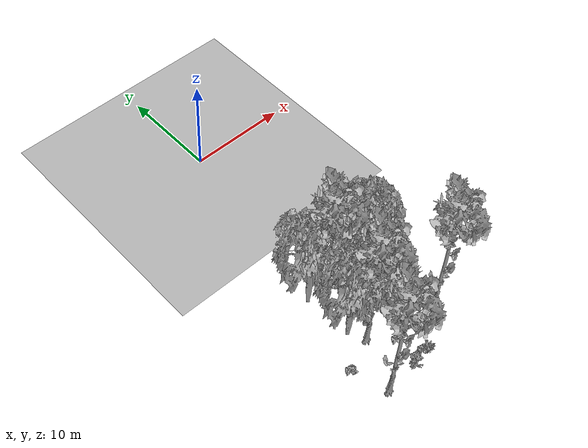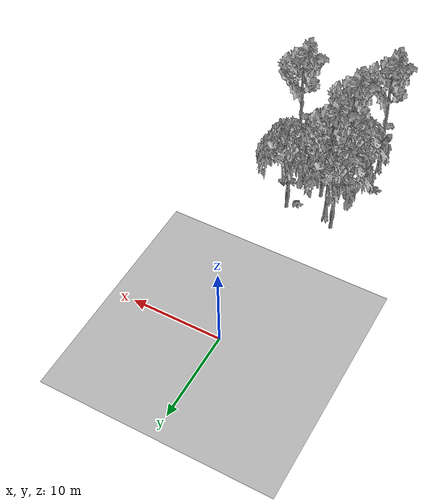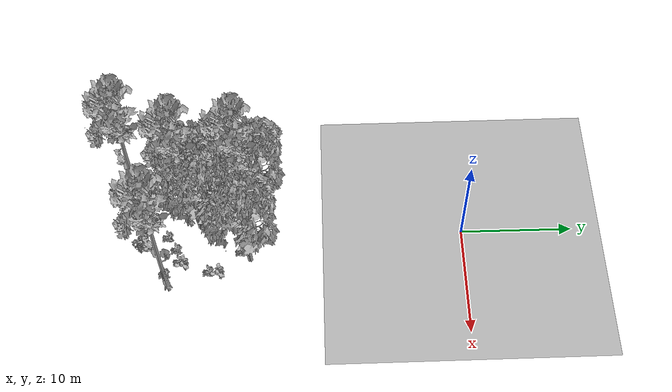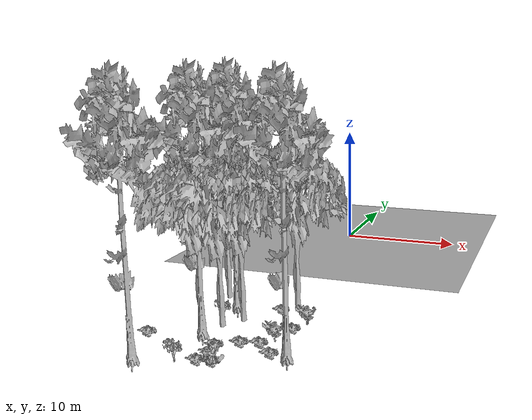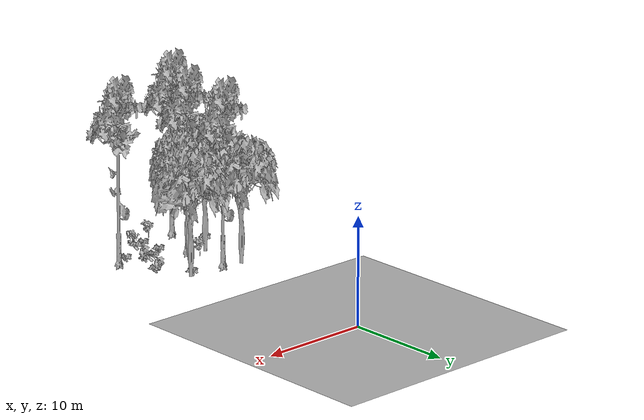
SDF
<sdf version="1.7">
 <world name="default">
  <model name="ground_plane">
   <static>1</static>
   <link name="link">
    <collision name="collision">
     <pose>-50 0 0 0 -0 0</pose>
     <geometry><plane><normal>0 0 1</normal><size>80 80</size></plane></geometry>
     <surface><contact><ode><min_depth>0.01</min_depth><max_vel>0</max_vel></ode></contact></surface>
    </collision>
    <visual name="grass">
     <cast_shadows>0</cast_shadows>
     <geometry>
      <mesh>
       <scale>0.46714285714285714 0.46714285714285714 0.1</scale>
       <uri>file://grass_plane/meshes/grass_plane.dae</uri>
      </mesh>
     </geometry>
    </visual>
   </link>
  </model>
  <model name="Tree 21">
   <static>1</static>
   <pose>2.1804711164128037 -19.127207961922252 0 1.57079 -0 0</pose>
   <link name="link">
    <collision name="collision">
     <geometry><mesh><scale>3.5 5 3.5</scale><uri>model://tree_2/meshes/tree_2.obj</uri></mesh></geometry>
    </collision>
    <visual name="visual">
     <geometry><mesh><scale>3.5 5 3.5</scale><uri>model://tree_2/meshes/tree_2.obj</uri></mesh></geometry>
    </visual>
   </link>
  </model>
  <model name="Tree 163">
   <static>1</static>
   <pose>4.466337687251233 -26.448423807020234 0 1.57079 -0 0</pose>
   <link name="link">
    <collision name="collision">
     <geometry><mesh><scale>3.5 5 3.5</scale><uri>model://tree_9/meshes/tree_9.obj</uri></mesh></geometry>
    </collision>
    <visual name="visual">
     <geometry><mesh><scale>3.5 5 3.5</scale><uri>model://tree_9/meshes/tree_9.obj</uri></mesh></geometry>
    </visual>
   </link>
  </model>
  <model name="Tree 238">
   <static>1</static>
   <pose>-4.3320404507004895 -29.461752469291753 0 1.57079 -0 0</pose>
   <link name="link">
    <collision name="collision">
     <geometry><mesh><scale>3.5 5 3.5</scale><uri>model://tree_9/meshes/tree_9.obj</uri></mesh></geometry>
    </collision>
    <visual name="visual">
     <geometry><mesh><scale>3.5 5 3.5</scale><uri>model://tree_9/meshes/tree_9.obj</uri></mesh></geometry>
    </visual>
   </link>
  </model>
  <model name="Tree 249">
   <static>1</static>
   <pose>-2.11956233516365 -19.812726314484017 0 1.57079 -0 0</pose>
   <link name="link">
    <collision name="collision">
     <geometry><mesh><scale>3.5 5 3.5</scale><uri>model://tree_9/meshes/tree_9.obj</uri></mesh></geometry>
    </collision>
    <visual name="visual">
     <geometry><mesh><scale>3.5 5 3.5</scale><uri>model://tree_9/meshes/tree_9.obj</uri></mesh></geometry>
    </visual>
   </link>
  </model>
  <model name="Tree 350">
   <static>1</static>
   <pose>-3.4067332646732 -18.687329157192806 0 1.57079 -0 0</pose>
   <link name="link">
    <collision name="collision">
     <geometry><mesh><scale>3.5 5 3.5</scale><uri>model://tree_2/meshes/tree_2.obj</uri></mesh></geometry>
    </collision>
    <visual name="visual">
     <geometry><mesh><scale>3.5 5 3.5</scale><uri>model://tree_2/meshes/tree_2.obj</uri></mesh></geometry>
    </visual>
   </link>
  </model>
  <model name="Tree 466">
   <static>1</static>
   <pose>-2.1733675739635316 -24.782888815704382 0 1.57079 -0 0</pose>
   <link name="link">
    <collision name="collision">
     <geometry><mesh><scale>3.5 5 3.5</scale><uri>model://tree_9/meshes/tree_9.obj</uri></mesh></geometry>
    </collision>
    <visual name="visual">
     <geometry><mesh><scale>3.5 5 3.5</scale><uri>model://tree_9/meshes/tree_9.obj</uri></mesh></geometry>
    </visual>
   </link>
  </model>
  <model name="Tree 468">
   <static>1</static>
   <pose>-1.3771808058201174 -23.700332919366733 0 1.57079 -0 0</pose>
   <link name="link">
    <collision name="collision">
     <geometry><mesh><scale>3.5 5 3.5</scale><uri>model://tree_2/meshes/tree_2.obj</uri></mesh></geometry>
    </collision>
    <visual name="visual">
     <geometry><mesh><scale>3.5 5 3.5</scale><uri>model://tree_2/meshes/tree_2.obj</uri></mesh></geometry>
    </visual>
   </link>
  </model>
  <model name="Tree 566">
   <static>1</static>
   <pose>-3.149017198582243 -23.33581055384486 0 1.57079 -0 0</pose>
   <link name="link">
    <collision name="collision">
     <geometry><mesh><scale>3.5 5 3.5</scale><uri>model://tree_2/meshes/tree_2.obj</uri></mesh></geometry>
    </collision>
    <visual name="visual">
     <geometry><mesh><scale>3.5 5 3.5</scale><uri>model://tree_2/meshes/tree_2.obj</uri></mesh></geometry>
    </visual>
   </link>
  </model>
  <model name="Tree 611">
   <static>1</static>
   <pose>-0.45846259847738935 -22.418714053655656 0 1.57079 -0 0</pose>
   <link name="link">
    <collision name="collision">
     <geometry><mesh><scale>3.5 5 3.5</scale><uri>model://tree_2/meshes/tree_2.obj</uri></mesh></geometry>
    </collision>
    <visual name="visual">
     <geometry><mesh><scale>3.5 5 3.5</scale><uri>model://tree_2/meshes/tree_2.obj</uri></mesh></geometry>
    </visual>
   </link>
  </model>
  <model name="Bush 116">
   <static>1</static>
   <pose>-1.4563304054906894 -29.39501635155546 0 1.57079 -0 0</pose>
   <link name="link">
    <collision name="collision">
     <geometry><mesh><scale>2 2 2</scale><uri>model://bush_5/meshes/bush_5.obj</uri></mesh></geometry>
     <surface><contact><collide_without_contact>false</collide_without_contact></contact></surface>
    </collision>
    <visual name="visual">
     <geometry><mesh><scale>2 2 2</scale><uri>model://bush_5/meshes/bush_5.obj</uri></mesh></geometry>
    </visual>
   </link>
  </model>
  <model name="Bush 148">
   <static>1</static>
   <pose>-1.7402522536762675 -22.55649568910429 0 1.57079 -0 0</pose>
   <link name="link">
    <collision name="collision">
     <geometry><mesh><scale>2 2 2</scale><uri>model://bush_5/meshes/bush_5.obj</uri></mesh></geometry>
     <surface><contact><collide_without_contact>false</collide_without_contact></contact></surface>
    </collision>
    <visual name="visual">
     <geometry><mesh><scale>2 2 2</scale><uri>model://bush_5/meshes/bush_5.obj</uri></mesh></geometry>
    </visual>
   </link>
  </model>
  <model name="Bush 189">
   <static>1</static>
   <pose>1.3645847222633236 -19.993043648778723 0 1.57079 -0 0</pose>
   <link name="link">
    <collision name="collision">
     <geometry><mesh><scale>2 2 2</scale><uri>model://bush_2/meshes/bush_2.obj</uri></mesh></geometry>
     <surface><contact><collide_without_contact>false</collide_without_contact></contact></surface>
    </collision>
    <visual name="visual">
     <geometry><mesh><scale>2 2 2</scale><uri>model://bush_2/meshes/bush_2.obj</uri></mesh></geometry>
    </visual>
   </link>
  </model>
  <model name="Bush 223">
   <static>1</static>
   <pose>0.9720668976238471 -25.810337986423242 0 1.57079 -0 0</pose>
   <link name="link">
    <collision name="collision">
     <geometry><mesh><scale>2 2 2</scale><uri>model://bush_2/meshes/bush_2.obj</uri></mesh></geometry>
     <surface><contact><collide_without_contact>false</collide_without_contact></contact></surface>
    </collision>
    <visual name="visual">
     <geometry><mesh><scale>2 2 2</scale><uri>model://bush_2/meshes/bush_2.obj</uri></mesh></geometry>
    </visual>
   </link>
  </model>
  <model name="Bush 264">
   <static>1</static>
   <pose>0.5862287459708497 -28.763251027942776 0 1.57079 -0 0</pose>
   <link name="link">
    <collision name="collision">
     <geometry><mesh><scale>2 2 2</scale><uri>model://bush_2/meshes/bush_2.obj</uri></mesh></geometry>
     <surface><contact><collide_without_contact>false</collide_without_contact></contact></surface>
    </collision>
    <visual name="visual">
     <geometry><mesh><scale>2 2 2</scale><uri>model://bush_2/meshes/bush_2.obj</uri></mesh></geometry>
    </visual>
   </link>
  </model>
  <model name="Bush 270">
   <static>1</static>
   <pose>3.4382797184836846 -26.751843475926364 0 1.57079 -0 0</pose>
   <link name="link">
    <collision name="collision">
     <geometry><mesh><scale>2 2 2</scale><uri>model://bush_2/meshes/bush_2.obj</uri></mesh></geometry>
     <surface><contact><collide_without_contact>false</collide_without_contact></contact></surface>
    </collision>
    <visual name="visual">
     <geometry><mesh><scale>2 2 2</scale><uri>model://bush_2/meshes/bush_2.obj</uri></mesh></geometry>
    </visual>
   </link>
  </model>
  <model name="Bush 303">
   <static>1</static>
   <pose>-0.36448250303074303 -28.857036179762623 0 1.57079 -0 0</pose>
   <link name="link">
    <collision name="collision">
     <geometry><mesh><scale>2 2 2</scale><uri>model://bush_2/meshes/bush_2.obj</uri></mesh></geometry>
     <surface><contact><collide_without_contact>false</collide_without_contact></contact></surface>
    </collision>
    <visual name="visual">
     <geometry><mesh><scale>2 2 2</scale><uri>model://bush_2/meshes/bush_2.obj</uri></mesh></geometry>
    </visual>
   </link>
  </model>
  <model name="Bush 320">
   <static>1</static>
   <pose>3.0343485183435064 -24.92666277905898 0 1.57079 -0 0</pose>
   <link name="link">
    <collision name="collision">
     <geometry><mesh><scale>2 2 2</scale><uri>model://bush_0/meshes/bush_0.obj</uri></mesh></geometry>
     <surface><contact><collide_without_contact>false</collide_without_contact></contact></surface>
    </collision>
    <visual name="visual">
     <geometry><mesh><scale>2 2 2</scale><uri>model://bush_0/meshes/bush_0.obj</uri></mesh></geometry>
    </visual>
   </link>
  </model>
  <model name="Bush 354">
   <static>1</static>
   <pose>2.2012962177392765 -25.53748797975082 0 1.57079 -0 0</pose>
   <link name="link">
    <collision name="collision">
     <geometry><mesh><scale>2 2 2</scale><uri>model://bush_2/meshes/bush_2.obj</uri></mesh></geometry>
     <surface><contact><collide_without_contact>false</collide_without_contact></contact></surface>
    </collision>
    <visual name="visual">
     <geometry><mesh><scale>2 2 2</scale><uri>model://bush_2/meshes/bush_2.obj</uri></mesh></geometry>
    </visual>
   </link>
  </model>
  <model name="Bush 471">
   <static>1</static>
   <pose>0.7328394932482425 -29.14438190606316 0 1.57079 -0 0</pose>
   <link name="link">
    <collision name="collision">
     <geometry><mesh><scale>2 2 2</scale><uri>model://bush_4/meshes/bush_4.obj</uri></mesh></geometry>
     <surface><contact><collide_without_contact>false</collide_without_contact></contact></surface>
    </collision>
    <visual name="visual">
     <geometry><mesh><scale>2 2 2</scale><uri>model://bush_4/meshes/bush_4.obj</uri></mesh></geometry>
    </visual>
   </link>
  </model>
  <model name="Bush 490">
   <static>1</static>
   <pose>3.323527614710059 -22.840751326450437 0 1.57079 -0 0</pose>
   <link name="link">
    <collision name="collision">
     <geometry><mesh><scale>2 2 2</scale><uri>model://bush_2/meshes/bush_2.obj</uri></mesh></geometry>
     <surface><contact><collide_without_contact>false</collide_without_contact></contact></surface>
    </collision>
    <visual name="visual">
     <geometry><mesh><scale>2 2 2</scale><uri>model://bush_2/meshes/bush_2.obj</uri></mesh></geometry>
    </visual>
   </link>
  </model>
  <model name="Bush 510">
   <static>1</static>
   <pose>-5.45519780353694 -26.125361897156694 0 1.57079 -0 0</pose>
   <link name="link">
    <collision name="collision">
     <geometry><mesh><scale>2 2 2</scale><uri>model://bush_2/meshes/bush_2.obj</uri></mesh></geometry>
     <surface><contact><collide_without_contact>false</collide_without_contact></contact></surface>
    </collision>
    <visual name="visual">
     <geometry><mesh><scale>2 2 2</scale><uri>model://bush_2/meshes/bush_2.obj</uri></mesh></geometry>
    </visual>
   </link>
  </model>
  <model name="Bush 549">
   <static>1</static>
   <pose>-0.34712491180957983 -26.627909138755356 0 1.57079 -0 0</pose>
   <link name="link">
    <collision name="collision">
     <geometry><mesh><scale>2 2 2</scale><uri>model://bush_2/meshes/bush_2.obj</uri></mesh></geometry>
     <surface><contact><collide_without_contact>false</collide_without_contact></contact></surface>
    </collision>
    <visual name="visual">
     <geometry><mesh><scale>2 2 2</scale><uri>model://bush_2/meshes/bush_2.obj</uri></mesh></geometry>
    </visual>
   </link>
  </model>
  <model name="Bush 558">
   <static>1</static>
   <pose>3.994718831481542 -21.758764135299423 0 1.57079 -0 0</pose>
   <link name="link">
    <collision name="collision">
     <geometry><mesh><scale>2 2 2</scale><uri>model://bush_0/meshes/bush_0.obj</uri></mesh></geometry>
     <surface><contact><collide_without_contact>false</collide_without_contact></contact></surface>
    </collision>
    <visual name="visual">
     <geometry><mesh><scale>2 2 2</scale><uri>model://bush_0/meshes/bush_0.obj</uri></mesh></geometry>
    </visual>
   </link>
  </model>
 </world>
</sdf>
